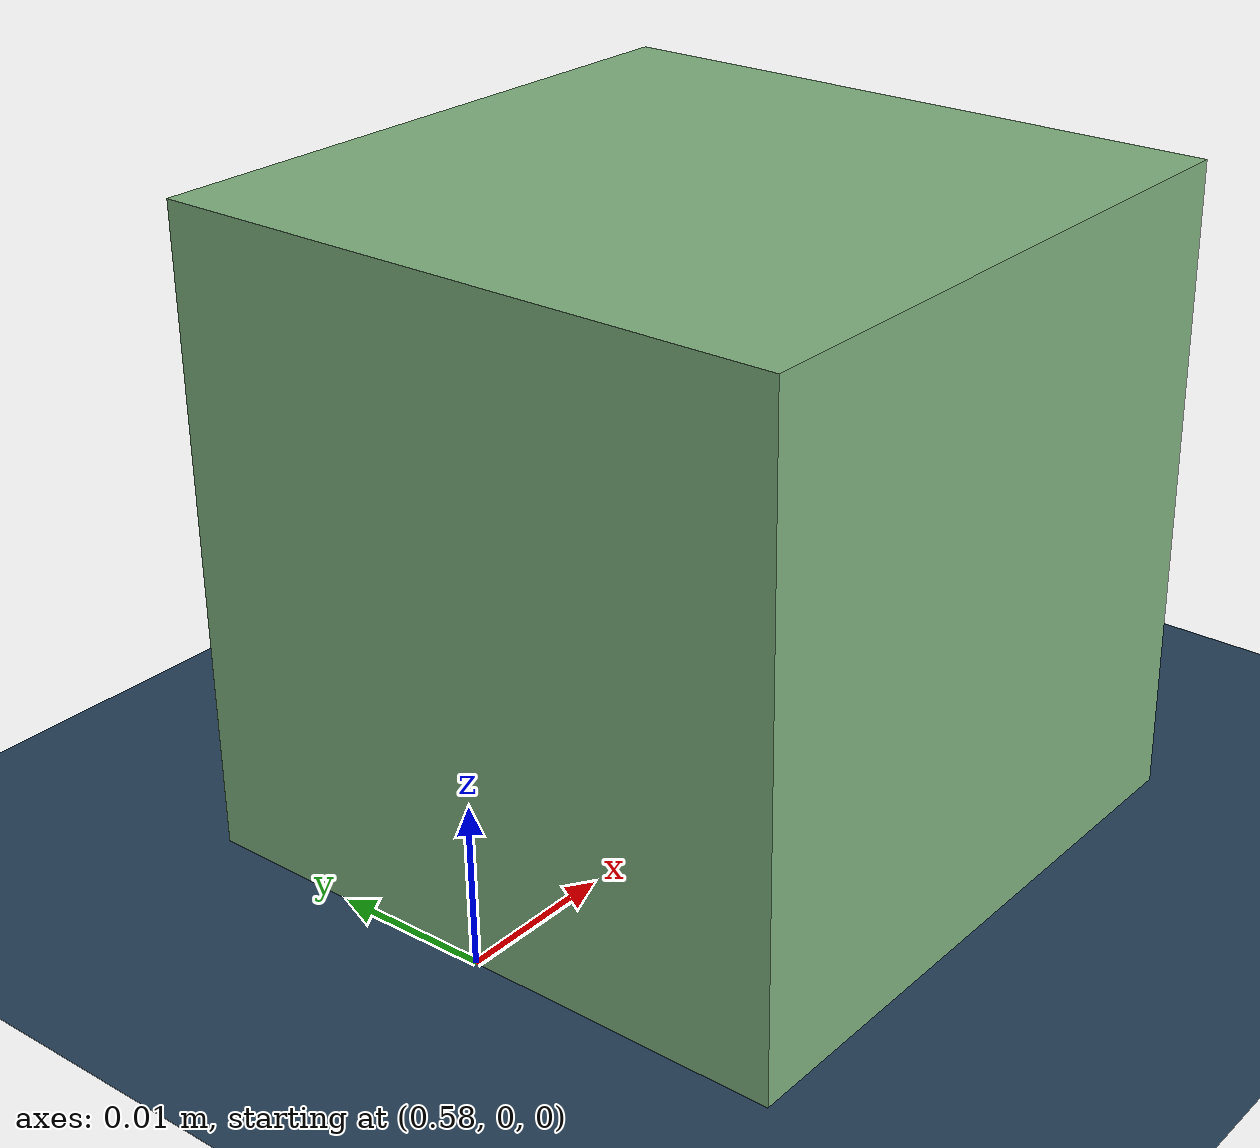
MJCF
<mujoco model="tidybot scene">
  <include file="arm.xml"/>

  <statistic center="0.25 0 0.6" extent="1.0" meansize="0.05"/>

  <visual>
    <headlight diffuse="0.6 0.6 0.6" ambient="0.1 0.1 0.1" specular="0 0 0"/>
    <rgba haze="0.15 0.25 0.35 1"/>
    <global azimuth="120" elevation="-20"/>
  </visual>

  <asset>
    <texture type="skybox" builtin="gradient" rgb1="0.3 0.5 0.7" rgb2="0 0 0" width="512" height="3072"/>
    <texture type="2d" name="groundplane" builtin="checker" mark="edge" rgb1="0.2 0.3 0.4" rgb2="0.1 0.2 0.3"
      markrgb="0.8 0.8 0.8" width="300" height="300"/>
    <material name="groundplane" texture="groundplane" texuniform="true" texrepeat="5 5"/>
  </asset>

  <worldbody>
    <light pos="0 0 1.5" directional="true"/>
    <geom name="floor" size="0 0 0.05" type="plane" material="groundplane"/>
    <body name="cube" pos="0.6 0 0.02">
      <freejoint/>
      <geom type="box" size="0.02 0.02 0.02" rgba=".5 .7 .5 1" mass="0.1"/>
    </body>
  </worldbody>
</mujoco>

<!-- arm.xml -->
<mujoco model="arm">
  <compiler angle="radian" meshdir="../assets"/>

  <option integrator="implicitfast"/>

  <default>
    <default class="visual">
      <geom type="mesh" contype="0" conaffinity="0" group="2"/>
    </default>
  </default>
</mujoco>
